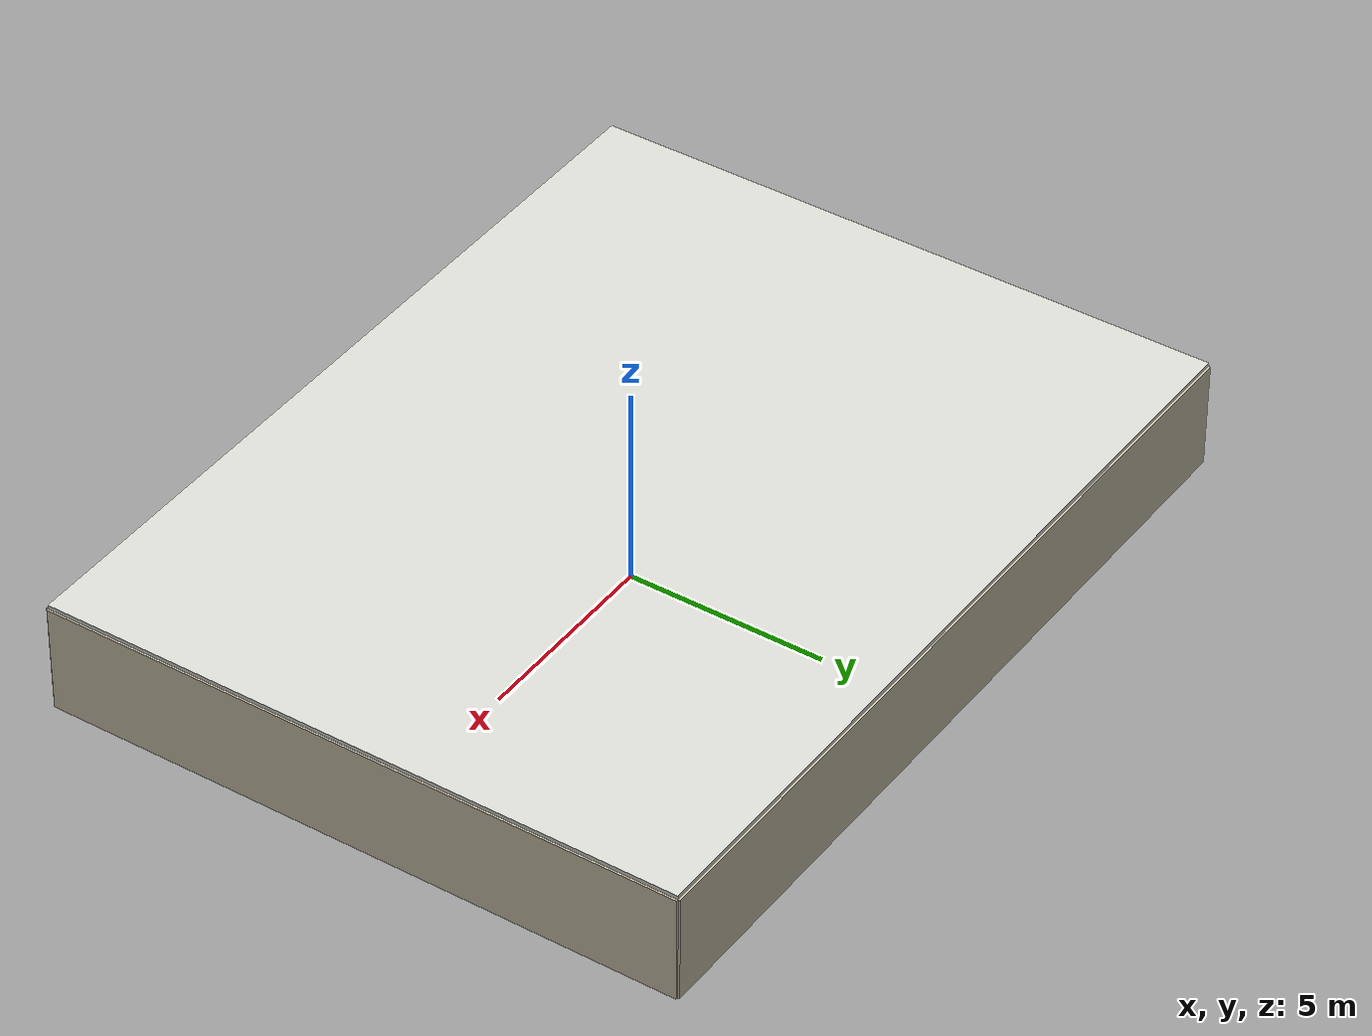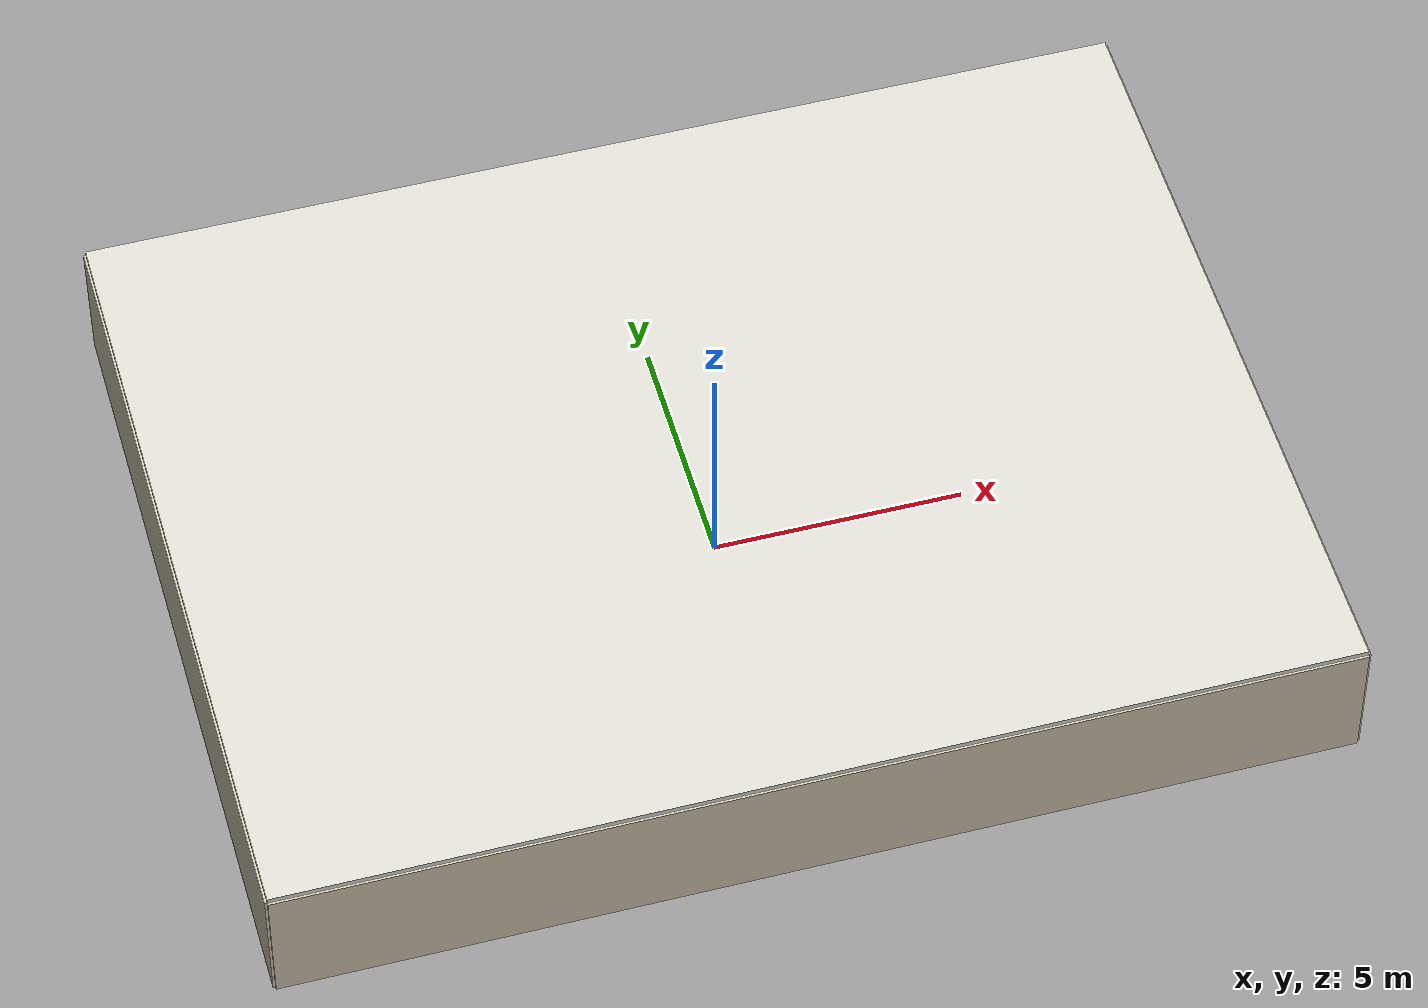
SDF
<?xml version="1.0" ?>
<sdf version='1.7'>
  <world name='default'>
    <plugin name='gazebo_ros_state' filename='libgazebo_ros_state.so'>
      <ros>
        <namespace>/</namespace>
      </ros>
      <update_rate>1000.0</update_rate>
    </plugin>

    <light name='sun' type='directional'>
      <cast_shadows>1</cast_shadows>
      <pose>0 0 10 0 -0 0</pose>
      <diffuse>0.30 0.30 0.29 1</diffuse>
      <specular>0.2 0.2 0.2 1</specular>
      <attenuation>
        <range>1000</range>
        <constant>0.9</constant>
        <linear>0.01</linear>
        <quadratic>0.001</quadratic>
      </attenuation>
      <direction>0.05 0.02 -1.0</direction>
      <spot>
        <inner_angle>0</inner_angle>
        <outer_angle>0</outer_angle>
        <falloff>0</falloff>
      </spot>
    </light>
    <model name='ground_plane'>
      <static>1</static>
      <link name='link'>
        <collision name='collision'>
          <geometry>
            <plane>
              <normal>0 0 1</normal>
              <size>100 100</size>
            </plane>
          </geometry>
          <surface>
            <friction>
              <ode>
                <mu>100</mu>
                <mu2>50</mu2>
              </ode>
              <torsional>
                <ode/>
              </torsional>
            </friction>
            <contact>
              <ode/>
            </contact>
            <bounce/>
          </surface>
          <max_contacts>10</max_contacts>
        </collision>
        <self_collide>0</self_collide>
        <enable_wind>0</enable_wind>
        <kinematic>0</kinematic>
      </link>
    </model>
    <gravity>0 0 -9.8</gravity>
    <magnetic_field>6e-06 2.3e-05 -4.2e-05</magnetic_field>
    <atmosphere type='adiabatic'/>
    <physics type='ode'>
      <max_step_size>0.001</max_step_size>
      <real_time_factor>1</real_time_factor>
      <real_time_update_rate>1000</real_time_update_rate>
    </physics>
    <scene>
      <ambient>0.73 0.73 0.71 1</ambient>
      <background>0.80 0.77 0.68 1</background>
      <shadows>1</shadows>
    </scene>
    <audio>
      <device>default</device>
    </audio>
    <wind/>
    <spherical_coordinates>
      <surface_model>EARTH_WGS84</surface_model>
      <latitude_deg>0</latitude_deg>
      <longitude_deg>0</longitude_deg>
      <elevation>0</elevation>
      <heading_deg>0</heading_deg>
    </spherical_coordinates>
    <model name='lab_01'>
    <static>1</static>
    <pose>0 0 0.001 0 0 0</pose>
    <link name='floor'>
      <visual name='floor_visual'>
        <cast_shadows>0</cast_shadows>
        <geometry><mesh><uri>model://lab_01/meshes/floor.obj</uri></mesh></geometry>
      </visual>
    </link>
    <link name='ducts'>
      <visual name='ducts_visual'>
        <geometry><mesh><uri>model://lab_01/meshes/ducts.obj</uri></mesh></geometry>
      </visual>
      <collision name='ducts_collision'>
        <geometry><mesh><uri>model://lab_01/meshes/ducts.obj</uri></mesh></geometry>
      </collision>
    </link>
    <link name='wall_0'>
      <pose>-0.025 8.303 1.350 0 0 0.000</pose>
      <visual name='wall_0_visual'>
        <cast_shadows>0</cast_shadows>
        <geometry><box><size>21.014 0.100 2.700</size></box></geometry>
        <material><ambient>0.80 0.77 0.68 1</ambient><diffuse>0.80 0.77 0.68 1</diffuse></material>
      </visual>
    </link>
    <link name='wall_1'>
      <pose>-0.025 -7.729 1.350 0 0 0.000</pose>
      <visual name='wall_1_visual'>
        <cast_shadows>0</cast_shadows>
        <geometry><box><size>21.014 0.100 2.700</size></box></geometry>
        <material><ambient>0.80 0.77 0.68 1</ambient><diffuse>0.80 0.77 0.68 1</diffuse></material>
      </visual>
    </link>
    <link name='wall_2'>
      <pose>-10.532 0.287 1.350 0 0 0.000</pose>
      <visual name='wall_2_visual'>
        <cast_shadows>0</cast_shadows>
        <geometry><box><size>0.100 16.032 2.700</size></box></geometry>
        <material><ambient>0.80 0.77 0.68 1</ambient><diffuse>0.80 0.77 0.68 1</diffuse></material>
      </visual>
    </link>
    <link name='wall_3'>
      <pose>10.482 0.287 1.350 0 0 0.000</pose>
      <visual name='wall_3_visual'>
        <cast_shadows>0</cast_shadows>
        <geometry><box><size>0.100 16.032 2.700</size></box></geometry>
        <material><ambient>0.80 0.77 0.68 1</ambient><diffuse>0.80 0.77 0.68 1</diffuse></material>
      </visual>
    </link>
    <link name='ceiling'>
      <pose>-0.025 0.287 2.750 0 0 0.000</pose>
      <visual name='ceiling_visual'>
        <cast_shadows>0</cast_shadows>
        <geometry><box><size>21.014 16.032 0.100</size></box></geometry>
        <material><ambient>0.85 0.85 0.82 1</ambient><diffuse>0.85 0.85 0.82 1</diffuse></material>
      </visual>
    </link>
    <link name='panel_0_0'>
      <pose>-9.032 -6.229 2.690 0 0 0.000</pose>
      <visual name='panel_0_0_visual'>
        <cast_shadows>0</cast_shadows>
        <geometry><box><size>1.200 0.600 0.020</size></box></geometry>
        <material><ambient>1.00 1.00 1.00 1</ambient><diffuse>1.00 1.00 1.00 1</diffuse><emissive>1.00 1.00 1.00 1</emissive></material>
      </visual>
    </link>
    <link name='panel_0_1'>
      <pose>-9.032 -3.829 2.690 0 0 0.000</pose>
      <visual name='panel_0_1_visual'>
        <cast_shadows>0</cast_shadows>
        <geometry><box><size>1.200 0.600 0.020</size></box></geometry>
        <material><ambient>1.00 1.00 1.00 1</ambient><diffuse>1.00 1.00 1.00 1</diffuse><emissive>1.00 1.00 1.00 1</emissive></material>
      </visual>
    </link>
    <link name='panel_0_2'>
      <pose>-9.032 -1.429 2.690 0 0 0.000</pose>
      <visual name='panel_0_2_visual'>
        <cast_shadows>0</cast_shadows>
        <geometry><box><size>1.200 0.600 0.020</size></box></geometry>
        <material><ambient>1.00 1.00 1.00 1</ambient><diffuse>1.00 1.00 1.00 1</diffuse><emissive>1.00 1.00 1.00 1</emissive></material>
      </visual>
    </link>
    <link name='panel_0_3'>
      <pose>-9.032 0.971 2.690 0 0 0.000</pose>
      <visual name='panel_0_3_visual'>
        <cast_shadows>0</cast_shadows>
        <geometry><box><size>1.200 0.600 0.020</size></box></geometry>
        <material><ambient>1.00 1.00 1.00 1</ambient><diffuse>1.00 1.00 1.00 1</diffuse><emissive>1.00 1.00 1.00 1</emissive></material>
      </visual>
    </link>
    <link name='panel_0_4'>
      <pose>-9.032 3.371 2.690 0 0 0.000</pose>
      <visual name='panel_0_4_visual'>
        <cast_shadows>0</cast_shadows>
        <geometry><box><size>1.200 0.600 0.020</size></box></geometry>
        <material><ambient>1.00 1.00 1.00 1</ambient><diffuse>1.00 1.00 1.00 1</diffuse><emissive>1.00 1.00 1.00 1</emissive></material>
      </visual>
    </link>
    <link name='panel_0_5'>
      <pose>-9.032 5.771 2.690 0 0 0.000</pose>
      <visual name='panel_0_5_visual'>
        <cast_shadows>0</cast_shadows>
        <geometry><box><size>1.200 0.600 0.020</size></box></geometry>
        <material><ambient>1.00 1.00 1.00 1</ambient><diffuse>1.00 1.00 1.00 1</diffuse><emissive>1.00 1.00 1.00 1</emissive></material>
      </visual>
    </link>
    <link name='panel_1_0'>
      <pose>-6.632 -6.229 2.690 0 0 0.000</pose>
      <visual name='panel_1_0_visual'>
        <cast_shadows>0</cast_shadows>
        <geometry><box><size>1.200 0.600 0.020</size></box></geometry>
        <material><ambient>1.00 1.00 1.00 1</ambient><diffuse>1.00 1.00 1.00 1</diffuse><emissive>1.00 1.00 1.00 1</emissive></material>
      </visual>
    </link>
    <link name='panel_1_1'>
      <pose>-6.632 -3.829 2.690 0 0 0.000</pose>
      <visual name='panel_1_1_visual'>
        <cast_shadows>0</cast_shadows>
        <geometry><box><size>1.200 0.600 0.020</size></box></geometry>
        <material><ambient>1.00 1.00 1.00 1</ambient><diffuse>1.00 1.00 1.00 1</diffuse><emissive>1.00 1.00 1.00 1</emissive></material>
      </visual>
    </link>
    <link name='panel_1_2'>
      <pose>-6.632 -1.429 2.690 0 0 0.000</pose>
      <visual name='panel_1_2_visual'>
        <cast_shadows>0</cast_shadows>
        <geometry><box><size>1.200 0.600 0.020</size></box></geometry>
        <material><ambient>1.00 1.00 1.00 1</ambient><diffuse>1.00 1.00 1.00 1</diffuse><emissive>1.00 1.00 1.00 1</emissive></material>
      </visual>
    </link>
    <link name='panel_1_3'>
      <pose>-6.632 0.971 2.690 0 0 0.000</pose>
      <visual name='panel_1_3_visual'>
        <cast_shadows>0</cast_shadows>
        <geometry><box><size>1.200 0.600 0.020</size></box></geometry>
        <material><ambient>1.00 1.00 1.00 1</ambient><diffuse>1.00 1.00 1.00 1</diffuse><emissive>1.00 1.00 1.00 1</emissive></material>
      </visual>
    </link>
    <link name='panel_1_4'>
      <pose>-6.632 3.371 2.690 0 0 0.000</pose>
      <visual name='panel_1_4_visual'>
        <cast_shadows>0</cast_shadows>
        <geometry><box><size>1.200 0.600 0.020</size></box></geometry>
        <material><ambient>1.00 1.00 1.00 1</ambient><diffuse>1.00 1.00 1.00 1</diffuse><emissive>1.00 1.00 1.00 1</emissive></material>
      </visual>
    </link>
    <link name='panel_1_5'>
      <pose>-6.632 5.771 2.690 0 0 0.000</pose>
      <visual name='panel_1_5_visual'>
        <cast_shadows>0</cast_shadows>
        <geometry><box><size>1.200 0.600 0.020</size></box></geometry>
        <material><ambient>1.00 1.00 1.00 1</ambient><diffuse>1.00 1.00 1.00 1</diffuse><emissive>1.00 1.00 1.00 1</emissive></material>
      </visual>
    </link>
    <link name='panel_2_0'>
      <pose>-4.232 -6.229 2.690 0 0 0.000</pose>
      <visual name='panel_2_0_visual'>
        <cast_shadows>0</cast_shadows>
        <geometry><box><size>1.200 0.600 0.020</size></box></geometry>
        <material><ambient>1.00 1.00 1.00 1</ambient><diffuse>1.00 1.00 1.00 1</diffuse><emissive>1.00 1.00 1.00 1</emissive></material>
      </visual>
    </link>
    <link name='panel_2_1'>
      <pose>-4.232 -3.829 2.690 0 0 0.000</pose>
      <visual name='panel_2_1_visual'>
        <cast_shadows>0</cast_shadows>
        <geometry><box><size>1.200 0.600 0.020</size></box></geometry>
        <material><ambient>1.00 1.00 1.00 1</ambient><diffuse>1.00 1.00 1.00 1</diffuse><emissive>1.00 1.00 1.00 1</emissive></material>
      </visual>
    </link>
    <link name='panel_2_2'>
      <pose>-4.232 -1.429 2.690 0 0 0.000</pose>
      <visual name='panel_2_2_visual'>
        <cast_shadows>0</cast_shadows>
        <geometry><box><size>1.200 0.600 0.020</size></box></geometry>
        <material><ambient>1.00 1.00 1.00 1</ambient><diffuse>1.00 1.00 1.00 1</diffuse><emissive>1.00 1.00 1.00 1</emissive></material>
      </visual>
    </link>
    <link name='panel_2_3'>
      <pose>-4.232 0.971 2.690 0 0 0.000</pose>
      <visual name='panel_2_3_visual'>
        <cast_shadows>0</cast_shadows>
        <geometry><box><size>1.200 0.600 0.020</size></box></geometry>
        <material><ambient>1.00 1.00 1.00 1</ambient><diffuse>1.00 1.00 1.00 1</diffuse><emissive>1.00 1.00 1.00 1</emissive></material>
      </visual>
    </link>
    <link name='panel_2_4'>
      <pose>-4.232 3.371 2.690 0 0 0.000</pose>
      <visual name='panel_2_4_visual'>
        <cast_shadows>0</cast_shadows>
        <geometry><box><size>1.200 0.600 0.020</size></box></geometry>
        <material><ambient>1.00 1.00 1.00 1</ambient><diffuse>1.00 1.00 1.00 1</diffuse><emissive>1.00 1.00 1.00 1</emissive></material>
      </visual>
    </link>
    <link name='panel_2_5'>
      <pose>-4.232 5.771 2.690 0 0 0.000</pose>
      <visual name='panel_2_5_visual'>
        <cast_shadows>0</cast_shadows>
        <geometry><box><size>1.200 0.600 0.020</size></box></geometry>
        <material><ambient>1.00 1.00 1.00 1</ambient><diffuse>1.00 1.00 1.00 1</diffuse><emissive>1.00 1.00 1.00 1</emissive></material>
      </visual>
    </link>
    <link name='panel_3_0'>
      <pose>-1.832 -6.229 2.690 0 0 0.000</pose>
      <visual name='panel_3_0_visual'>
        <cast_shadows>0</cast_shadows>
        <geometry><box><size>1.200 0.600 0.020</size></box></geometry>
        <material><ambient>1.00 1.00 1.00 1</ambient><diffuse>1.00 1.00 1.00 1</diffuse><emissive>1.00 1.00 1.00 1</emissive></material>
      </visual>
    </link>
    <link name='panel_3_1'>
      <pose>-1.832 -3.829 2.690 0 0 0.000</pose>
      <visual name='panel_3_1_visual'>
        <cast_shadows>0</cast_shadows>
        <geometry><box><size>1.200 0.600 0.020</size></box></geometry>
        <material><ambient>1.00 1.00 1.00 1</ambient><diffuse>1.00 1.00 1.00 1</diffuse><emissive>1.00 1.00 1.00 1</emissive></material>
      </visual>
    </link>
    <link name='panel_3_2'>
      <pose>-1.832 -1.429 2.690 0 0 0.000</pose>
      <visual name='panel_3_2_visual'>
        <cast_shadows>0</cast_shadows>
        <geometry><box><size>1.200 0.600 0.020</size></box></geometry>
        <material><ambient>1.00 1.00 1.00 1</ambient><diffuse>1.00 1.00 1.00 1</diffuse><emissive>1.00 1.00 1.00 1</emissive></material>
      </visual>
    </link>
    <link name='panel_3_3'>
      <pose>-1.832 0.971 2.690 0 0 0.000</pose>
      <visual name='panel_3_3_visual'>
        <cast_shadows>0</cast_shadows>
        <geometry><box><size>1.200 0.600 0.020</size></box></geometry>
        <material><ambient>1.00 1.00 1.00 1</ambient><diffuse>1.00 1.00 1.00 1</diffuse><emissive>1.00 1.00 1.00 1</emissive></material>
      </visual>
    </link>
    <link name='panel_3_4'>
      <pose>-1.832 3.371 2.690 0 0 0.000</pose>
      <visual name='panel_3_4_visual'>
        <cast_shadows>0</cast_shadows>
        <geometry><box><size>1.200 0.600 0.020</size></box></geometry>
        <material><ambient>1.00 1.00 1.00 1</ambient><diffuse>1.00 1.00 1.00 1</diffuse><emissive>1.00 1.00 1.00 1</emissive></material>
      </visual>
    </link>
    <link name='panel_3_5'>
      <pose>-1.832 5.771 2.690 0 0 0.000</pose>
      <visual name='panel_3_5_visual'>
        <cast_shadows>0</cast_shadows>
        <geometry><box><size>1.200 0.600 0.020</size></box></geometry>
        <material><ambient>1.00 1.00 1.00 1</ambient><diffuse>1.00 1.00 1.00 1</diffuse><emissive>1.00 1.00 1.00 1</emissive></material>
      </visual>
    </link>
    <link name='panel_4_0'>
      <pose>0.568 -6.229 2.690 0 0 0.000</pose>
      <visual name='panel_4_0_visual'>
        <cast_shadows>0</cast_shadows>
        <geometry><box><size>1.200 0.600 0.020</size></box></geometry>
        <material><ambient>1.00 1.00 1.00 1</ambient><diffuse>1.00 1.00 1.00 1</diffuse><emissive>1.00 1.00 1.00 1</emissive></material>
      </visual>
    </link>
    <link name='panel_4_1'>
      <pose>0.568 -3.829 2.690 0 0 0.000</pose>
      <visual name='panel_4_1_visual'>
        <cast_shadows>0</cast_shadows>
        <geometry><box><size>1.200 0.600 0.020</size></box></geometry>
        <material><ambient>1.00 1.00 1.00 1</ambient><diffuse>1.00 1.00 1.00 1</diffuse><emissive>1.00 1.00 1.00 1</emissive></material>
      </visual>
    </link>
    <link name='panel_4_2'>
      <pose>0.568 -1.429 2.690 0 0 0.000</pose>
      <visual name='panel_4_2_visual'>
        <cast_shadows>0</cast_shadows>
        <geometry><box><size>1.200 0.600 0.020</size></box></geometry>
        <material><ambient>1.00 1.00 1.00 1</ambient><diffuse>1.00 1.00 1.00 1</diffuse><emissive>1.00 1.00 1.00 1</emissive></material>
      </visual>
    </link>
    <link name='panel_4_3'>
      <pose>0.568 0.971 2.690 0 0 0.000</pose>
      <visual name='panel_4_3_visual'>
        <cast_shadows>0</cast_shadows>
        <geometry><box><size>1.200 0.600 0.020</size></box></geometry>
        <material><ambient>1.00 1.00 1.00 1</ambient><diffuse>1.00 1.00 1.00 1</diffuse><emissive>1.00 1.00 1.00 1</emissive></material>
      </visual>
    </link>
    <link name='panel_4_4'>
      <pose>0.568 3.371 2.690 0 0 0.000</pose>
      <visual name='panel_4_4_visual'>
        <cast_shadows>0</cast_shadows>
        <geometry><box><size>1.200 0.600 0.020</size></box></geometry>
        <material><ambient>1.00 1.00 1.00 1</ambient><diffuse>1.00 1.00 1.00 1</diffuse><emissive>1.00 1.00 1.00 1</emissive></material>
      </visual>
    </link>
    <link name='panel_4_5'>
      <pose>0.568 5.771 2.690 0 0 0.000</pose>
      <visual name='panel_4_5_visual'>
        <cast_shadows>0</cast_shadows>
        <geometry><box><size>1.200 0.600 0.020</size></box></geometry>
        <material><ambient>1.00 1.00 1.00 1</ambient><diffuse>1.00 1.00 1.00 1</diffuse><emissive>1.00 1.00 1.00 1</emissive></material>
      </visual>
    </link>
    <link name='panel_5_0'>
      <pose>2.968 -6.229 2.690 0 0 0.000</pose>
      <visual name='panel_5_0_visual'>
        <cast_shadows>0</cast_shadows>
        <geometry><box><size>1.200 0.600 0.020</size></box></geometry>
        <material><ambient>1.00 1.00 1.00 1</ambient><diffuse>1.00 1.00 1.00 1</diffuse><emissive>1.00 1.00 1.00 1</emissive></material>
      </visual>
    </link>
    <link name='panel_5_1'>
      <pose>2.968 -3.829 2.690 0 0 0.000</pose>
      <visual name='panel_5_1_visual'>
        <cast_shadows>0</cast_shadows>
        <geometry><box><size>1.200 0.600 0.020</size></box></geometry>
        <material><ambient>1.00 1.00 1.00 1</ambient><diffuse>1.00 1.00 1.00 1</diffuse><emissive>1.00 1.00 1.00 1</emissive></material>
      </visual>
    </link>
    <link name='panel_5_2'>
      <pose>2.968 -1.429 2.690 0 0 0.000</pose>
      <visual name='panel_5_2_visual'>
        <cast_shadows>0</cast_shadows>
        <geometry><box><size>1.200 0.600 0.020</size></box></geometry>
        <material><ambient>1.00 1.00 1.00 1</ambient><diffuse>1.00 1.00 1.00 1</diffuse><emissive>1.00 1.00 1.00 1</emissive></material>
      </visual>
    </link>
    <link name='panel_5_3'>
      <pose>2.968 0.971 2.690 0 0 0.000</pose>
      <visual name='panel_5_3_visual'>
        <cast_shadows>0</cast_shadows>
        <geometry><box><size>1.200 0.600 0.020</size></box></geometry>
        <material><ambient>1.00 1.00 1.00 1</ambient><diffuse>1.00 1.00 1.00 1</diffuse><emissive>1.00 1.00 1.00 1</emissive></material>
      </visual>
    </link>
    <link name='panel_5_4'>
      <pose>2.968 3.371 2.690 0 0 0.000</pose>
      <visual name='panel_5_4_visual'>
        <cast_shadows>0</cast_shadows>
        <geometry><box><size>1.200 0.600 0.020</size></box></geometry>
        <material><ambient>1.00 1.00 1.00 1</ambient><diffuse>1.00 1.00 1.00 1</diffuse><emissive>1.00 1.00 1.00 1</emissive></material>
      </visual>
    </link>
    <link name='panel_5_5'>
      <pose>2.968 5.771 2.690 0 0 0.000</pose>
      <visual name='panel_5_5_visual'>
        <cast_shadows>0</cast_shadows>
        <geometry><box><size>1.200 0.600 0.020</size></box></geometry>
        <material><ambient>1.00 1.00 1.00 1</ambient><diffuse>1.00 1.00 1.00 1</diffuse><emissive>1.00 1.00 1.00 1</emissive></material>
      </visual>
    </link>
    <link name='panel_6_0'>
      <pose>5.368 -6.229 2.690 0 0 0.000</pose>
      <visual name='panel_6_0_visual'>
        <cast_shadows>0</cast_shadows>
        <geometry><box><size>1.200 0.600 0.020</size></box></geometry>
        <material><ambient>1.00 1.00 1.00 1</ambient><diffuse>1.00 1.00 1.00 1</diffuse><emissive>1.00 1.00 1.00 1</emissive></material>
      </visual>
    </link>
    <link name='panel_6_1'>
      <pose>5.368 -3.829 2.690 0 0 0.000</pose>
      <visual name='panel_6_1_visual'>
        <cast_shadows>0</cast_shadows>
        <geometry><box><size>1.200 0.600 0.020</size></box></geometry>
        <material><ambient>1.00 1.00 1.00 1</ambient><diffuse>1.00 1.00 1.00 1</diffuse><emissive>1.00 1.00 1.00 1</emissive></material>
      </visual>
    </link>
    <link name='panel_6_2'>
      <pose>5.368 -1.429 2.690 0 0 0.000</pose>
      <visual name='panel_6_2_visual'>
        <cast_shadows>0</cast_shadows>
        <geometry><box><size>1.200 0.600 0.020</size></box></geometry>
        <material><ambient>1.00 1.00 1.00 1</ambient><diffuse>1.00 1.00 1.00 1</diffuse><emissive>1.00 1.00 1.00 1</emissive></material>
      </visual>
    </link>
    <link name='panel_6_3'>
      <pose>5.368 0.971 2.690 0 0 0.000</pose>
      <visual name='panel_6_3_visual'>
        <cast_shadows>0</cast_shadows>
        <geometry><box><size>1.200 0.600 0.020</size></box></geometry>
        <material><ambient>1.00 1.00 1.00 1</ambient><diffuse>1.00 1.00 1.00 1</diffuse><emissive>1.00 1.00 1.00 1</emissive></material>
      </visual>
    </link>
    <link name='panel_6_4'>
      <pose>5.368 3.371 2.690 0 0 0.000</pose>
      <visual name='panel_6_4_visual'>
        <cast_shadows>0</cast_shadows>
        <geometry><box><size>1.200 0.600 0.020</size></box></geometry>
        <material><ambient>1.00 1.00 1.00 1</ambient><diffuse>1.00 1.00 1.00 1</diffuse><emissive>1.00 1.00 1.00 1</emissive></material>
      </visual>
    </link>
    <link name='panel_6_5'>
      <pose>5.368 5.771 2.690 0 0 0.000</pose>
      <visual name='panel_6_5_visual'>
        <cast_shadows>0</cast_shadows>
        <geometry><box><size>1.200 0.600 0.020</size></box></geometry>
        <material><ambient>1.00 1.00 1.00 1</ambient><diffuse>1.00 1.00 1.00 1</diffuse><emissive>1.00 1.00 1.00 1</emissive></material>
      </visual>
    </link>
    <link name='panel_7_0'>
      <pose>7.768 -6.229 2.690 0 0 0.000</pose>
      <visual name='panel_7_0_visual'>
        <cast_shadows>0</cast_shadows>
        <geometry><box><size>1.200 0.600 0.020</size></box></geometry>
        <material><ambient>1.00 1.00 1.00 1</ambient><diffuse>1.00 1.00 1.00 1</diffuse><emissive>1.00 1.00 1.00 1</emissive></material>
      </visual>
    </link>
    <link name='panel_7_1'>
      <pose>7.768 -3.829 2.690 0 0 0.000</pose>
      <visual name='panel_7_1_visual'>
        <cast_shadows>0</cast_shadows>
        <geometry><box><size>1.200 0.600 0.020</size></box></geometry>
        <material><ambient>1.00 1.00 1.00 1</ambient><diffuse>1.00 1.00 1.00 1</diffuse><emissive>1.00 1.00 1.00 1</emissive></material>
      </visual>
    </link>
    <link name='panel_7_2'>
      <pose>7.768 -1.429 2.690 0 0 0.000</pose>
      <visual name='panel_7_2_visual'>
        <cast_shadows>0</cast_shadows>
        <geometry><box><size>1.200 0.600 0.020</size></box></geometry>
        <material><ambient>1.00 1.00 1.00 1</ambient><diffuse>1.00 1.00 1.00 1</diffuse><emissive>1.00 1.00 1.00 1</emissive></material>
      </visual>
    </link>
    <link name='panel_7_3'>
      <pose>7.768 0.971 2.690 0 0 0.000</pose>
      <visual name='panel_7_3_visual'>
        <cast_shadows>0</cast_shadows>
        <geometry><box><size>1.200 0.600 0.020</size></box></geometry>
        <material><ambient>1.00 1.00 1.00 1</ambient><diffuse>1.00 1.00 1.00 1</diffuse><emissive>1.00 1.00 1.00 1</emissive></material>
      </visual>
    </link>
    <link name='panel_7_4'>
      <pose>7.768 3.371 2.690 0 0 0.000</pose>
      <visual name='panel_7_4_visual'>
        <cast_shadows>0</cast_shadows>
        <geometry><box><size>1.200 0.600 0.020</size></box></geometry>
        <material><ambient>1.00 1.00 1.00 1</ambient><diffuse>1.00 1.00 1.00 1</diffuse><emissive>1.00 1.00 1.00 1</emissive></material>
      </visual>
    </link>
    <link name='panel_7_5'>
      <pose>7.768 5.771 2.690 0 0 0.000</pose>
      <visual name='panel_7_5_visual'>
        <cast_shadows>0</cast_shadows>
        <geometry><box><size>1.200 0.600 0.020</size></box></geometry>
        <material><ambient>1.00 1.00 1.00 1</ambient><diffuse>1.00 1.00 1.00 1</diffuse><emissive>1.00 1.00 1.00 1</emissive></material>
      </visual>
    </link>
    <link name='p0'>
      <pose>-8.781 8.018 0.925 0 0 0.000</pose>
      <visual name='p0_visual'>
        <cast_shadows>0</cast_shadows>
        <geometry><box><size>0.300 0.450 1.850</size></box></geometry>
        <material><ambient>0.55 0.57 0.58 1</ambient><diffuse>0.55 0.57 0.58 1</diffuse></material>
      </visual>
    </link>
    <link name='p1'>
      <pose>-8.471 8.018 0.925 0 0 0.000</pose>
      <visual name='p1_visual'>
        <cast_shadows>0</cast_shadows>
        <geometry><box><size>0.300 0.450 1.850</size></box></geometry>
        <material><ambient>0.55 0.57 0.58 1</ambient><diffuse>0.55 0.57 0.58 1</diffuse></material>
      </visual>
    </link>
    <link name='p2'>
      <pose>-8.161 8.018 0.925 0 0 0.000</pose>
      <visual name='p2_visual'>
        <cast_shadows>0</cast_shadows>
        <geometry><box><size>0.300 0.450 1.850</size></box></geometry>
        <material><ambient>0.55 0.57 0.58 1</ambient><diffuse>0.55 0.57 0.58 1</diffuse></material>
      </visual>
    </link>
    <link name='p3'>
      <pose>-7.851 8.018 0.925 0 0 0.000</pose>
      <visual name='p3_visual'>
        <cast_shadows>0</cast_shadows>
        <geometry><box><size>0.300 0.450 1.850</size></box></geometry>
        <material><ambient>0.55 0.57 0.58 1</ambient><diffuse>0.55 0.57 0.58 1</diffuse></material>
      </visual>
    </link>
    <link name='p4'>
      <pose>-7.541 8.018 0.925 0 0 0.000</pose>
      <visual name='p4_visual'>
        <cast_shadows>0</cast_shadows>
        <geometry><box><size>0.300 0.450 1.850</size></box></geometry>
        <material><ambient>0.55 0.57 0.58 1</ambient><diffuse>0.55 0.57 0.58 1</diffuse></material>
      </visual>
    </link>
    <link name='p5'>
      <pose>-7.231 8.018 0.925 0 0 0.000</pose>
      <visual name='p5_visual'>
        <cast_shadows>0</cast_shadows>
        <geometry><box><size>0.300 0.450 1.850</size></box></geometry>
        <material><ambient>0.55 0.57 0.58 1</ambient><diffuse>0.55 0.57 0.58 1</diffuse></material>
      </visual>
    </link>
    <link name='p6'>
      <pose>-4.523 7.868 0.375 0 0 0.000</pose>
      <visual name='p6_visual'>
        <cast_shadows>0</cast_shadows>
        <geometry><box><size>1.500 0.750 0.750</size></box></geometry>
        <material><ambient>0.32 0.32 0.33 1</ambient><diffuse>0.32 0.32 0.33 1</diffuse></material>
      </visual>
    </link>
    <link name='p7'>
      <pose>-1.868 7.993 0.225 0 0 0.000</pose>
      <visual name='p7_visual'>
        <cast_shadows>0</cast_shadows>
        <geometry><box><size>0.600 0.500 0.450</size></box></geometry>
        <material><ambient>0.62 0.45 0.28 1</ambient><diffuse>0.62 0.45 0.28 1</diffuse></material>
      </visual>
    </link>
    <link name='p8'>
      <pose>-0.279 7.868 0.375 0 0 0.000</pose>
      <visual name='p8_visual'>
        <cast_shadows>0</cast_shadows>
        <geometry><box><size>1.500 0.750 0.750</size></box></geometry>
        <material><ambient>0.32 0.32 0.33 1</ambient><diffuse>0.32 0.32 0.33 1</diffuse></material>
      </visual>
    </link>
    <link name='p9'>
      <pose>3.519 7.993 0.225 0 0 0.000</pose>
      <visual name='p9_visual'>
        <cast_shadows>0</cast_shadows>
        <geometry><box><size>0.600 0.500 0.450</size></box></geometry>
        <material><ambient>0.62 0.45 0.28 1</ambient><diffuse>0.62 0.45 0.28 1</diffuse></material>
      </visual>
    </link>
    <link name='p10'>
      <pose>4.863 8.018 0.925 0 0 0.000</pose>
      <visual name='p10_visual'>
        <cast_shadows>0</cast_shadows>
        <geometry><box><size>0.300 0.450 1.850</size></box></geometry>
        <material><ambient>0.55 0.57 0.58 1</ambient><diffuse>0.55 0.57 0.58 1</diffuse></material>
      </visual>
    </link>
    <link name='p11'>
      <pose>5.173 8.018 0.925 0 0 0.000</pose>
      <visual name='p11_visual'>
        <cast_shadows>0</cast_shadows>
        <geometry><box><size>0.300 0.450 1.850</size></box></geometry>
        <material><ambient>0.55 0.57 0.58 1</ambient><diffuse>0.55 0.57 0.58 1</diffuse></material>
      </visual>
    </link>
    <link name='p12'>
      <pose>5.483 8.018 0.925 0 0 0.000</pose>
      <visual name='p12_visual'>
        <cast_shadows>0</cast_shadows>
        <geometry><box><size>0.300 0.450 1.850</size></box></geometry>
        <material><ambient>0.55 0.57 0.58 1</ambient><diffuse>0.55 0.57 0.58 1</diffuse></material>
      </visual>
    </link>
    <link name='p13'>
      <pose>5.793 8.018 0.925 0 0 0.000</pose>
      <visual name='p13_visual'>
        <cast_shadows>0</cast_shadows>
        <geometry><box><size>0.300 0.450 1.850</size></box></geometry>
        <material><ambient>0.55 0.57 0.58 1</ambient><diffuse>0.55 0.57 0.58 1</diffuse></material>
      </visual>
    </link>
    <link name='p14'>
      <pose>6.103 8.018 0.925 0 0 0.000</pose>
      <visual name='p14_visual'>
        <cast_shadows>0</cast_shadows>
        <geometry><box><size>0.300 0.450 1.850</size></box></geometry>
        <material><ambient>0.55 0.57 0.58 1</ambient><diffuse>0.55 0.57 0.58 1</diffuse></material>
      </visual>
    </link>
    <link name='p15'>
      <pose>6.413 8.018 0.925 0 0 0.000</pose>
      <visual name='p15_visual'>
        <cast_shadows>0</cast_shadows>
        <geometry><box><size>0.300 0.450 1.850</size></box></geometry>
        <material><ambient>0.55 0.57 0.58 1</ambient><diffuse>0.55 0.57 0.58 1</diffuse></material>
      </visual>
    </link>
    <link name='p16'>
      <pose>6.723 8.018 0.925 0 0 0.000</pose>
      <visual name='p16_visual'>
        <cast_shadows>0</cast_shadows>
        <geometry><box><size>0.300 0.450 1.850</size></box></geometry>
        <material><ambient>0.55 0.57 0.58 1</ambient><diffuse>0.55 0.57 0.58 1</diffuse></material>
      </visual>
    </link>
    <link name='p17'>
      <pose>7.033 8.018 0.925 0 0 0.000</pose>
      <visual name='p17_visual'>
        <cast_shadows>0</cast_shadows>
        <geometry><box><size>0.300 0.450 1.850</size></box></geometry>
        <material><ambient>0.55 0.57 0.58 1</ambient><diffuse>0.55 0.57 0.58 1</diffuse></material>
      </visual>
    </link>
    <link name='p18'>
      <pose>8.190 7.993 0.225 0 0 0.000</pose>
      <visual name='p18_visual'>
        <cast_shadows>0</cast_shadows>
        <geometry><box><size>0.600 0.500 0.450</size></box></geometry>
        <material><ambient>0.62 0.45 0.28 1</ambient><diffuse>0.62 0.45 0.28 1</diffuse></material>
      </visual>
    </link>
    <link name='p19'>
      <pose>10.172 -5.502 0.225 0 0 0.000</pose>
      <visual name='p19_visual'>
        <cast_shadows>0</cast_shadows>
        <geometry><box><size>0.500 0.600 0.450</size></box></geometry>
        <material><ambient>0.62 0.45 0.28 1</ambient><diffuse>0.62 0.45 0.28 1</diffuse></material>
      </visual>
    </link>
    <link name='p20'>
      <pose>10.397 -3.314 0.375 0 0 0.000</pose>
      <visual name='p20_visual'>
        <cast_shadows>0</cast_shadows>
        <geometry><box><size>0.050 1.800 0.750</size></box></geometry>
        <material><ambient>0.93 0.93 0.92 1</ambient><diffuse>0.93 0.93 0.92 1</diffuse></material>
      </visual>
    </link>
    <link name='p21'>
      <pose>10.172 -0.131 0.650 0 0 0.000</pose>
      <visual name='p21_visual'>
        <cast_shadows>0</cast_shadows>
        <geometry><box><size>0.500 0.900 1.300</size></box></geometry>
        <material><ambient>0.25 0.33 0.36 1</ambient><diffuse>0.25 0.33 0.36 1</diffuse></material>
      </visual>
    </link>
    <link name='p22'>
      <pose>10.197 2.604 0.925 0 0 0.000</pose>
      <visual name='p22_visual'>
        <cast_shadows>0</cast_shadows>
        <geometry><box><size>0.450 0.300 1.850</size></box></geometry>
        <material><ambient>0.55 0.57 0.58 1</ambient><diffuse>0.55 0.57 0.58 1</diffuse></material>
      </visual>
    </link>
    <link name='p23'>
      <pose>10.197 2.914 0.925 0 0 0.000</pose>
      <visual name='p23_visual'>
        <cast_shadows>0</cast_shadows>
        <geometry><box><size>0.450 0.300 1.850</size></box></geometry>
        <material><ambient>0.55 0.57 0.58 1</ambient><diffuse>0.55 0.57 0.58 1</diffuse></material>
      </visual>
    </link>
    <link name='p24'>
      <pose>10.197 3.224 0.925 0 0 0.000</pose>
      <visual name='p24_visual'>
        <cast_shadows>0</cast_shadows>
        <geometry><box><size>0.450 0.300 1.850</size></box></geometry>
        <material><ambient>0.55 0.57 0.58 1</ambient><diffuse>0.55 0.57 0.58 1</diffuse></material>
      </visual>
    </link>
    <link name='p25'>
      <pose>10.197 3.534 0.925 0 0 0.000</pose>
      <visual name='p25_visual'>
        <cast_shadows>0</cast_shadows>
        <geometry><box><size>0.450 0.300 1.850</size></box></geometry>
        <material><ambient>0.55 0.57 0.58 1</ambient><diffuse>0.55 0.57 0.58 1</diffuse></material>
      </visual>
    </link>
    <link name='p26'>
      <pose>10.197 3.844 0.925 0 0 0.000</pose>
      <visual name='p26_visual'>
        <cast_shadows>0</cast_shadows>
        <geometry><box><size>0.450 0.300 1.850</size></box></geometry>
        <material><ambient>0.55 0.57 0.58 1</ambient><diffuse>0.55 0.57 0.58 1</diffuse></material>
      </visual>
    </link>
    <link name='p27'>
      <pose>10.197 4.154 0.925 0 0 0.000</pose>
      <visual name='p27_visual'>
        <cast_shadows>0</cast_shadows>
        <geometry><box><size>0.450 0.300 1.850</size></box></geometry>
        <material><ambient>0.55 0.57 0.58 1</ambient><diffuse>0.55 0.57 0.58 1</diffuse></material>
      </visual>
    </link>
    <link name='p28'>
      <pose>10.197 4.464 0.925 0 0 0.000</pose>
      <visual name='p28_visual'>
        <cast_shadows>0</cast_shadows>
        <geometry><box><size>0.450 0.300 1.850</size></box></geometry>
        <material><ambient>0.55 0.57 0.58 1</ambient><diffuse>0.55 0.57 0.58 1</diffuse></material>
      </visual>
    </link>
    <link name='p29'>
      <pose>-7.484 -7.419 0.650 0 0 0.000</pose>
      <visual name='p29_visual'>
        <cast_shadows>0</cast_shadows>
        <geometry><box><size>0.900 0.500 1.300</size></box></geometry>
        <material><ambient>0.25 0.33 0.36 1</ambient><diffuse>0.25 0.33 0.36 1</diffuse></material>
      </visual>
    </link>
    <link name='p30'>
      <pose>-4.993 -7.419 0.225 0 0 0.000</pose>
      <visual name='p30_visual'>
        <cast_shadows>0</cast_shadows>
        <geometry><box><size>0.600 0.500 0.450</size></box></geometry>
        <material><ambient>0.62 0.45 0.28 1</ambient><diffuse>0.62 0.45 0.28 1</diffuse></material>
      </visual>
    </link>
    <link name='p31'>
      <pose>-4.993 -7.419 0.675 0 0 0.000</pose>
      <visual name='p31_visual'>
        <cast_shadows>0</cast_shadows>
        <geometry><box><size>0.600 0.500 0.450</size></box></geometry>
        <material><ambient>0.62 0.45 0.28 1</ambient><diffuse>0.62 0.45 0.28 1</diffuse></material>
      </visual>
    </link>
    <link name='p32'>
      <pose>-4.993 -7.419 1.125 0 0 0.000</pose>
      <visual name='p32_visual'>
        <cast_shadows>0</cast_shadows>
        <geometry><box><size>0.600 0.500 0.450</size></box></geometry>
        <material><ambient>0.62 0.45 0.28 1</ambient><diffuse>0.62 0.45 0.28 1</diffuse></material>
      </visual>
    </link>
    <link name='p33'>
      <pose>-2.847 -7.419 0.225 0 0 0.000</pose>
      <visual name='p33_visual'>
        <cast_shadows>0</cast_shadows>
        <geometry><box><size>0.600 0.500 0.450</size></box></geometry>
        <material><ambient>0.62 0.45 0.28 1</ambient><diffuse>0.62 0.45 0.28 1</diffuse></material>
      </visual>
    </link>
    <link name='p34'>
      <pose>-2.847 -7.419 0.675 0 0 0.000</pose>
      <visual name='p34_visual'>
        <cast_shadows>0</cast_shadows>
        <geometry><box><size>0.600 0.500 0.450</size></box></geometry>
        <material><ambient>0.62 0.45 0.28 1</ambient><diffuse>0.62 0.45 0.28 1</diffuse></material>
      </visual>
    </link>
    <link name='p35'>
      <pose>-1.566 -7.419 0.225 0 0 0.000</pose>
      <visual name='p35_visual'>
        <cast_shadows>0</cast_shadows>
        <geometry><box><size>0.600 0.500 0.450</size></box></geometry>
        <material><ambient>0.62 0.45 0.28 1</ambient><diffuse>0.62 0.45 0.28 1</diffuse></material>
      </visual>
    </link>
    <link name='p36'>
      <pose>-0.473 -7.419 0.225 0 0 0.000</pose>
      <visual name='p36_visual'>
        <cast_shadows>0</cast_shadows>
        <geometry><box><size>0.600 0.500 0.450</size></box></geometry>
        <material><ambient>0.62 0.45 0.28 1</ambient><diffuse>0.62 0.45 0.28 1</diffuse></material>
      </visual>
    </link>
    <link name='p37'>
      <pose>-0.473 -7.419 0.675 0 0 0.000</pose>
      <visual name='p37_visual'>
        <cast_shadows>0</cast_shadows>
        <geometry><box><size>0.600 0.500 0.450</size></box></geometry>
        <material><ambient>0.62 0.45 0.28 1</ambient><diffuse>0.62 0.45 0.28 1</diffuse></material>
      </visual>
    </link>
    <link name='p38'>
      <pose>1.354 -7.294 0.375 0 0 0.000</pose>
      <visual name='p38_visual'>
        <cast_shadows>0</cast_shadows>
        <geometry><box><size>1.500 0.750 0.750</size></box></geometry>
        <material><ambient>0.32 0.32 0.33 1</ambient><diffuse>0.32 0.32 0.33 1</diffuse></material>
      </visual>
    </link>
    <link name='p39'>
      <pose>4.358 -7.444 0.925 0 0 0.000</pose>
      <visual name='p39_visual'>
        <cast_shadows>0</cast_shadows>
        <geometry><box><size>0.300 0.450 1.850</size></box></geometry>
        <material><ambient>0.55 0.57 0.58 1</ambient><diffuse>0.55 0.57 0.58 1</diffuse></material>
      </visual>
    </link>
    <link name='p40'>
      <pose>4.668 -7.444 0.925 0 0 0.000</pose>
      <visual name='p40_visual'>
        <cast_shadows>0</cast_shadows>
        <geometry><box><size>0.300 0.450 1.850</size></box></geometry>
        <material><ambient>0.55 0.57 0.58 1</ambient><diffuse>0.55 0.57 0.58 1</diffuse></material>
      </visual>
    </link>
    <link name='p41'>
      <pose>4.978 -7.444 0.925 0 0 0.000</pose>
      <visual name='p41_visual'>
        <cast_shadows>0</cast_shadows>
        <geometry><box><size>0.300 0.450 1.850</size></box></geometry>
        <material><ambient>0.55 0.57 0.58 1</ambient><diffuse>0.55 0.57 0.58 1</diffuse></material>
      </visual>
    </link>
    <link name='p42'>
      <pose>5.288 -7.444 0.925 0 0 0.000</pose>
      <visual name='p42_visual'>
        <cast_shadows>0</cast_shadows>
        <geometry><box><size>0.300 0.450 1.850</size></box></geometry>
        <material><ambient>0.55 0.57 0.58 1</ambient><diffuse>0.55 0.57 0.58 1</diffuse></material>
      </visual>
    </link>
    <link name='p43'>
      <pose>5.598 -7.444 0.925 0 0 0.000</pose>
      <visual name='p43_visual'>
        <cast_shadows>0</cast_shadows>
        <geometry><box><size>0.300 0.450 1.850</size></box></geometry>
        <material><ambient>0.55 0.57 0.58 1</ambient><diffuse>0.55 0.57 0.58 1</diffuse></material>
      </visual>
    </link>
    <link name='p44'>
      <pose>5.908 -7.444 0.925 0 0 0.000</pose>
      <visual name='p44_visual'>
        <cast_shadows>0</cast_shadows>
        <geometry><box><size>0.300 0.450 1.850</size></box></geometry>
        <material><ambient>0.55 0.57 0.58 1</ambient><diffuse>0.55 0.57 0.58 1</diffuse></material>
      </visual>
    </link>
    <link name='p45'>
      <pose>7.697 -7.444 0.925 0 0 0.000</pose>
      <visual name='p45_visual'>
        <cast_shadows>0</cast_shadows>
        <geometry><box><size>0.300 0.450 1.850</size></box></geometry>
        <material><ambient>0.55 0.57 0.58 1</ambient><diffuse>0.55 0.57 0.58 1</diffuse></material>
      </visual>
    </link>
    <link name='p46'>
      <pose>8.007 -7.444 0.925 0 0 0.000</pose>
      <visual name='p46_visual'>
        <cast_shadows>0</cast_shadows>
        <geometry><box><size>0.300 0.450 1.850</size></box></geometry>
        <material><ambient>0.55 0.57 0.58 1</ambient><diffuse>0.55 0.57 0.58 1</diffuse></material>
      </visual>
    </link>
    <link name='p47'>
      <pose>8.317 -7.444 0.925 0 0 0.000</pose>
      <visual name='p47_visual'>
        <cast_shadows>0</cast_shadows>
        <geometry><box><size>0.300 0.450 1.850</size></box></geometry>
        <material><ambient>0.55 0.57 0.58 1</ambient><diffuse>0.55 0.57 0.58 1</diffuse></material>
      </visual>
    </link>
    <link name='p48'>
      <pose>8.627 -7.444 0.925 0 0 0.000</pose>
      <visual name='p48_visual'>
        <cast_shadows>0</cast_shadows>
        <geometry><box><size>0.300 0.450 1.850</size></box></geometry>
        <material><ambient>0.55 0.57 0.58 1</ambient><diffuse>0.55 0.57 0.58 1</diffuse></material>
      </visual>
    </link>
    <link name='p49'>
      <pose>8.937 -7.444 0.925 0 0 0.000</pose>
      <visual name='p49_visual'>
        <cast_shadows>0</cast_shadows>
        <geometry><box><size>0.300 0.450 1.850</size></box></geometry>
        <material><ambient>0.55 0.57 0.58 1</ambient><diffuse>0.55 0.57 0.58 1</diffuse></material>
      </visual>
    </link>
    <link name='p50'>
      <pose>-10.247 -4.827 0.925 0 0 0.000</pose>
      <visual name='p50_visual'>
        <cast_shadows>0</cast_shadows>
        <geometry><box><size>0.450 0.300 1.850</size></box></geometry>
        <material><ambient>0.55 0.57 0.58 1</ambient><diffuse>0.55 0.57 0.58 1</diffuse></material>
      </visual>
    </link>
    <link name='p51'>
      <pose>-10.247 -4.517 0.925 0 0 0.000</pose>
      <visual name='p51_visual'>
        <cast_shadows>0</cast_shadows>
        <geometry><box><size>0.450 0.300 1.850</size></box></geometry>
        <material><ambient>0.55 0.57 0.58 1</ambient><diffuse>0.55 0.57 0.58 1</diffuse></material>
      </visual>
    </link>
    <link name='p52'>
      <pose>-10.247 -4.207 0.925 0 0 0.000</pose>
      <visual name='p52_visual'>
        <cast_shadows>0</cast_shadows>
        <geometry><box><size>0.450 0.300 1.850</size></box></geometry>
        <material><ambient>0.55 0.57 0.58 1</ambient><diffuse>0.55 0.57 0.58 1</diffuse></material>
      </visual>
    </link>
    <link name='p53'>
      <pose>-10.247 -3.897 0.925 0 0 0.000</pose>
      <visual name='p53_visual'>
        <cast_shadows>0</cast_shadows>
        <geometry><box><size>0.450 0.300 1.850</size></box></geometry>
        <material><ambient>0.55 0.57 0.58 1</ambient><diffuse>0.55 0.57 0.58 1</diffuse></material>
      </visual>
    </link>
    <link name='p54'>
      <pose>-10.247 -3.587 0.925 0 0 0.000</pose>
      <visual name='p54_visual'>
        <cast_shadows>0</cast_shadows>
        <geometry><box><size>0.450 0.300 1.850</size></box></geometry>
        <material><ambient>0.55 0.57 0.58 1</ambient><diffuse>0.55 0.57 0.58 1</diffuse></material>
      </visual>
    </link>
    <link name='p55'>
      <pose>-10.247 -3.277 0.925 0 0 0.000</pose>
      <visual name='p55_visual'>
        <cast_shadows>0</cast_shadows>
        <geometry><box><size>0.450 0.300 1.850</size></box></geometry>
        <material><ambient>0.55 0.57 0.58 1</ambient><diffuse>0.55 0.57 0.58 1</diffuse></material>
      </visual>
    </link>
    <link name='p56'>
      <pose>-10.247 -2.967 0.925 0 0 0.000</pose>
      <visual name='p56_visual'>
        <cast_shadows>0</cast_shadows>
        <geometry><box><size>0.450 0.300 1.850</size></box></geometry>
        <material><ambient>0.55 0.57 0.58 1</ambient><diffuse>0.55 0.57 0.58 1</diffuse></material>
      </visual>
    </link>
    <link name='p57'>
      <pose>-10.222 -1.387 0.225 0 0 0.000</pose>
      <visual name='p57_visual'>
        <cast_shadows>0</cast_shadows>
        <geometry><box><size>0.500 0.600 0.450</size></box></geometry>
        <material><ambient>0.62 0.45 0.28 1</ambient><diffuse>0.62 0.45 0.28 1</diffuse></material>
      </visual>
    </link>
    <link name='p58'>
      <pose>-10.222 -1.387 0.675 0 0 0.000</pose>
      <visual name='p58_visual'>
        <cast_shadows>0</cast_shadows>
        <geometry><box><size>0.500 0.600 0.450</size></box></geometry>
        <material><ambient>0.62 0.45 0.28 1</ambient><diffuse>0.62 0.45 0.28 1</diffuse></material>
      </visual>
    </link>
    <link name='p59'>
      <pose>-10.222 -1.387 1.125 0 0 0.000</pose>
      <visual name='p59_visual'>
        <cast_shadows>0</cast_shadows>
        <geometry><box><size>0.500 0.600 0.450</size></box></geometry>
        <material><ambient>0.62 0.45 0.28 1</ambient><diffuse>0.62 0.45 0.28 1</diffuse></material>
      </visual>
    </link>
    <link name='p60'>
      <pose>-10.097 0.314 0.375 0 0 0.000</pose>
      <visual name='p60_visual'>
        <cast_shadows>0</cast_shadows>
        <geometry><box><size>0.750 1.500 0.750</size></box></geometry>
        <material><ambient>0.32 0.32 0.33 1</ambient><diffuse>0.32 0.32 0.33 1</diffuse></material>
      </visual>
    </link>
    <link name='p61'>
      <pose>-10.222 2.401 0.225 0 0 0.000</pose>
      <visual name='p61_visual'>
        <cast_shadows>0</cast_shadows>
        <geometry><box><size>0.500 0.600 0.450</size></box></geometry>
        <material><ambient>0.62 0.45 0.28 1</ambient><diffuse>0.62 0.45 0.28 1</diffuse></material>
      </visual>
    </link>
    <link name='p62'>
      <pose>-10.222 3.446 0.650 0 0 0.000</pose>
      <visual name='p62_visual'>
        <cast_shadows>0</cast_shadows>
        <geometry><box><size>0.500 0.900 1.300</size></box></geometry>
        <material><ambient>0.25 0.33 0.36 1</ambient><diffuse>0.25 0.33 0.36 1</diffuse></material>
      </visual>
    </link>
    <link name='p63'>
      <pose>-10.097 4.863 0.375 0 0 0.000</pose>
      <visual name='p63_visual'>
        <cast_shadows>0</cast_shadows>
        <geometry><box><size>0.750 1.500 0.750</size></box></geometry>
        <material><ambient>0.32 0.32 0.33 1</ambient><diffuse>0.32 0.32 0.33 1</diffuse></material>
      </visual>
    </link>
  </model>
  </world>
</sdf>
